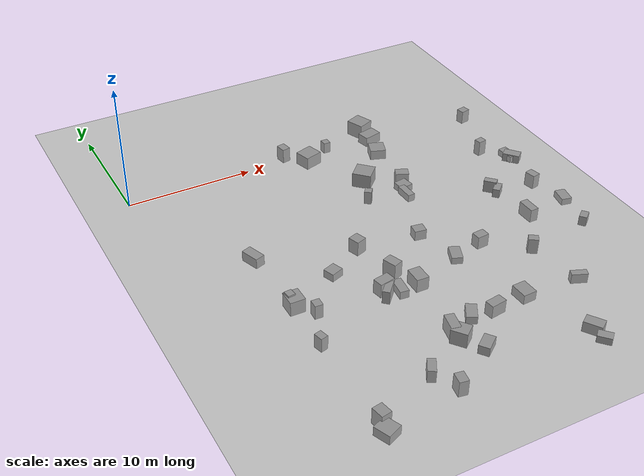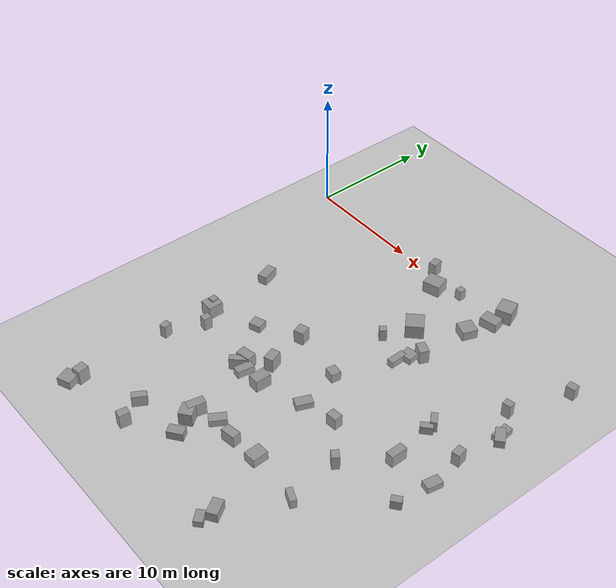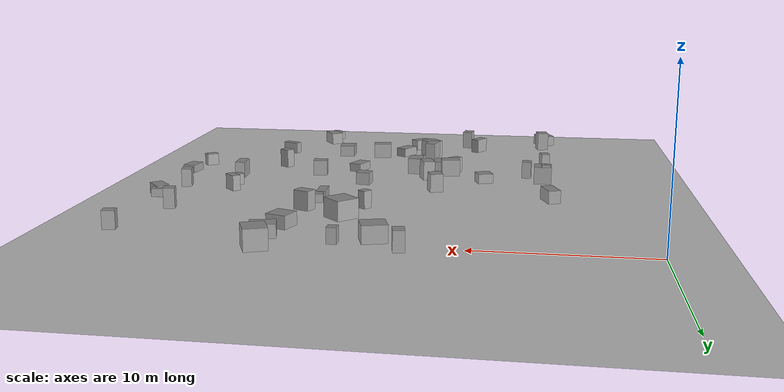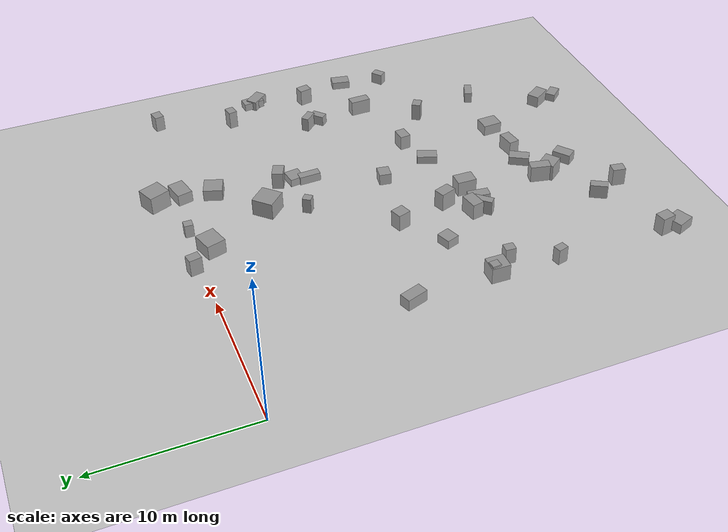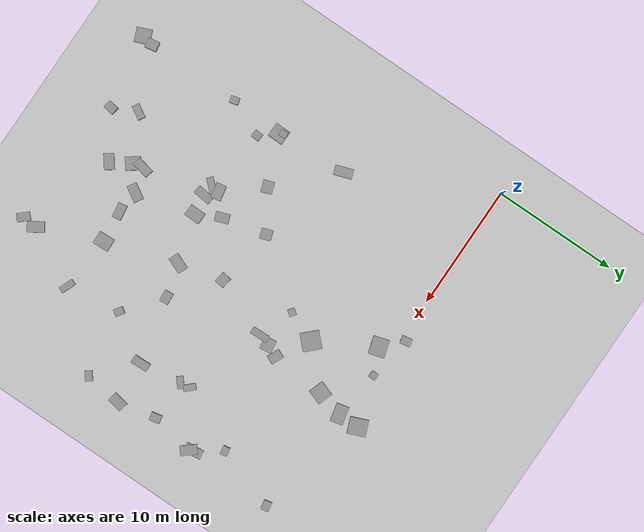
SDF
<sdf version="1.7">
 <world name="default">
  <model name="ground_plane">
   <static>1</static>
   <link name="link">
    <collision name="collision">
     <geometry><plane><normal>0 0 1</normal><size>100 100</size></plane></geometry>
     <surface><friction><ode><mu>100</mu><mu2>50</mu2></ode></friction></surface>
    </collision>
    <visual name="visual">
     <cast_shadows>0</cast_shadows>
     <geometry><plane><normal>0 0 1</normal><size>100 100</size></plane></geometry>
     <material>
      <script><uri>file://media/materials/scripts/gazebo.material</uri><name>Gazebo/Grey</name></script>
     </material>
    </visual>
   </link>
  </model>
  <model name="unit_box_0">
   <static>true</static>
   <pose>5.627471768498843 -16.20319487183246 0.5 0 -0 328.3934222508951</pose>
   <link name="link">
    <inertial>
     <mass>1</mass>
     <inertia>
      <ixx>0.166667</ixx>
      <ixy>0</ixy>
      <ixz>0</ixz>
      <iyy>0.166667</iyy>
      <iyz>0</iyz>
      <izz>0.166667</izz>
     </inertia>
    </inertial>
    <collision name="collision">
     <geometry><box><size>0.5827919822700333 0.5535294650942497 1.420743045685274</size></box></geometry>
    </collision>
    <visual name="visual">
     <geometry><box><size>0.5827919822700333 0.5535294650942497 1.420743045685274</size></box></geometry>
     <material>
      <script><name>Gazebo/Grey</name><uri>file://media/materials/scripts/gazebo.material</uri></script>
     </material>
    </visual>
   </link>
  </model>
  <model name="unit_box_9">
   <static>true</static>
   <pose>20.26620788877139 -2.749642604939659 0.5 0 -0 134.7541991440881</pose>
   <link name="link">
    <inertial>
     <mass>1</mass>
     <inertia>
      <ixx>0.166667</ixx>
      <ixy>0</ixy>
      <ixz>0</ixz>
      <iyy>0.166667</iyy>
      <iyz>0</iyz>
      <izz>0.166667</izz>
     </inertia>
    </inertial>
    <collision name="collision">
     <geometry><box><size>1.24650252537936 1.253774818010641 0.7950120379356779</size></box></geometry>
    </collision>
    <visual name="visual">
     <geometry><box><size>1.24650252537936 1.253774818010641 0.7950120379356779</size></box></geometry>
     <material>
      <script><name>Gazebo/Grey</name><uri>file://media/materials/scripts/gazebo.material</uri></script>
     </material>
    </visual>
   </link>
  </model>
  <model name="unit_box_10">
   <static>true</static>
   <pose>5.437323707347929 -10.792670169444165 0.5 0 -0 201.39579407565316</pose>
   <link name="link">
    <inertial>
     <mass>1</mass>
     <inertia>
      <ixx>0.166667</ixx>
      <ixy>0</ixy>
      <ixz>0</ixz>
      <iyy>0.166667</iyy>
      <iyz>0</iyz>
      <izz>0.166667</izz>
     </inertia>
    </inertial>
    <collision name="collision">
     <geometry><box><size>0.7689403991867364 1.4520089688627191 0.8072029405422583</size></box></geometry>
    </collision>
    <visual name="visual">
     <geometry><box><size>0.7689403991867364 1.4520089688627191 0.8072029405422583</size></box></geometry>
     <material>
      <script><name>Gazebo/Grey</name><uri>file://media/materials/scripts/gazebo.material</uri></script>
     </material>
    </visual>
   </link>
  </model>
  <model name="unit_box_13">
   <static>true</static>
   <pose>6.861349307954114 -17.79102723468238 0.5 0 -0 43.92288849873564</pose>
   <link name="link">
    <inertial>
     <mass>1</mass>
     <inertia>
      <ixx>0.166667</ixx>
      <ixy>0</ixy>
      <ixz>0</ixz>
      <iyy>0.166667</iyy>
      <iyz>0</iyz>
      <izz>0.166667</izz>
     </inertia>
    </inertial>
    <collision name="collision">
     <geometry><box><size>0.6055544027230478 0.6857820129138893 1.1537404358124181</size></box></geometry>
    </collision>
    <visual name="visual">
     <geometry><box><size>0.6055544027230478 0.6857820129138893 1.1537404358124181</size></box></geometry>
     <material>
      <script><name>Gazebo/Grey</name><uri>file://media/materials/scripts/gazebo.material</uri></script>
     </material>
    </visual>
   </link>
  </model>
  <model name="unit_box_14">
   <static>true</static>
   <pose>5.618380994731012 -20.709095346360606 0.5 0 -0 292.4153457704035</pose>
   <link name="link">
    <inertial>
     <mass>1</mass>
     <inertia>
      <ixx>0.166667</ixx>
      <ixy>0</ixy>
      <ixz>0</ixz>
      <iyy>0.166667</iyy>
      <iyz>0</iyz>
      <izz>0.166667</izz>
     </inertia>
    </inertial>
    <collision name="collision">
     <geometry><box><size>0.5567356589885245 0.7008477635557117 1.1573102387236456</size></box></geometry>
    </collision>
    <visual name="visual">
     <geometry><box><size>0.5567356589885245 0.7008477635557117 1.1573102387236456</size></box></geometry>
     <material>
      <script><name>Gazebo/Grey</name><uri>file://media/materials/scripts/gazebo.material</uri></script>
     </material>
    </visual>
   </link>
  </model>
  <model name="unit_box_17">
   <static>true</static>
   <pose>12.66213659052233 -12.962916933397935 0.5 0 -0 286.207196710561</pose>
   <link name="link">
    <inertial>
     <mass>1</mass>
     <inertia>
      <ixx>0.166667</ixx>
      <ixy>0</ixy>
      <ixz>0</ixz>
      <iyy>0.166667</iyy>
      <iyz>0</iyz>
      <izz>0.166667</izz>
     </inertia>
    </inertial>
    <collision name="collision">
     <geometry><box><size>0.8311423269497479 0.8872742078254097 1.2710147313330409</size></box></geometry>
    </collision>
    <visual name="visual">
     <geometry><box><size>0.8311423269497479 0.8872742078254097 1.2710147313330409</size></box></geometry>
     <material>
      <script><name>Gazebo/Grey</name><uri>file://media/materials/scripts/gazebo.material</uri></script>
     </material>
    </visual>
   </link>
  </model>
  <model name="unit_box_18">
   <static>true</static>
   <pose>9.636020102886391 -14.911595727227738 0.5 0 -0 169.99521131837008</pose>
   <link name="link">
    <inertial>
     <mass>1</mass>
     <inertia>
      <ixx>0.166667</ixx>
      <ixy>0</ixy>
      <ixz>0</ixz>
      <iyy>0.166667</iyy>
      <iyz>0</iyz>
      <izz>0.166667</izz>
     </inertia>
    </inertial>
    <collision name="collision">
     <geometry><box><size>0.9842812903339123 0.8837834291854924 0.6274265674525699</size></box></geometry>
    </collision>
    <visual name="visual">
     <geometry><box><size>0.9842812903339123 0.8837834291854924 0.6274265674525699</size></box></geometry>
     <material>
      <script><name>Gazebo/Grey</name><uri>file://media/materials/scripts/gazebo.material</uri></script>
     </material>
    </visual>
   </link>
  </model>
  <model name="unit_box_20">
   <static>true</static>
   <pose>29.36088644894142 -8.22944636349619 0.5 0 -0 121.04933037444114</pose>
   <link name="link">
    <inertial>
     <mass>1</mass>
     <inertia>
      <ixx>0.166667</ixx>
      <ixy>0</ixy>
      <ixz>0</ixz>
      <iyy>0.166667</iyy>
      <iyz>0</iyz>
      <izz>0.166667</izz>
     </inertia>
    </inertial>
    <collision name="collision">
     <geometry><box><size>1.4406663692053037 0.7334797075197601 0.5174091967911121</size></box></geometry>
    </collision>
    <visual name="visual">
     <geometry><box><size>1.4406663692053037 0.7334797075197601 0.5174091967911121</size></box></geometry>
     <material>
      <script><name>Gazebo/Grey</name><uri>file://media/materials/scripts/gazebo.material</uri></script>
     </material>
    </visual>
   </link>
  </model>
  <model name="unit_box_22">
   <static>true</static>
   <pose>29.514338587605934 -8.558415328057897 0.5 0 -0 225.32562232518265</pose>
   <link name="link">
    <inertial>
     <mass>1</mass>
     <inertia>
      <ixx>0.166667</ixx>
      <ixy>0</ixy>
      <ixz>0</ixz>
      <iyy>0.166667</iyy>
      <iyz>0</iyz>
      <izz>0.166667</izz>
     </inertia>
    </inertial>
    <collision name="collision">
     <geometry><box><size>1.3274998079993439 0.7774295099843246 0.6819152240145191</size></box></geometry>
    </collision>
    <visual name="visual">
     <geometry><box><size>1.3274998079993439 0.7774295099843246 0.6819152240145191</size></box></geometry>
     <material>
      <script><name>Gazebo/Grey</name><uri>file://media/materials/scripts/gazebo.material</uri></script>
     </material>
    </visual>
   </link>
  </model>
  <model name="unit_box_34">
   <static>true</static>
   <pose>28.914605373808442 -12.025328264805125 0.5 0 -0 78.74361488101322</pose>
   <link name="link">
    <inertial>
     <mass>1</mass>
     <inertia>
      <ixx>0.166667</ixx>
      <ixy>0</ixy>
      <ixz>0</ixz>
      <iyy>0.166667</iyy>
      <iyz>0</iyz>
      <izz>0.166667</izz>
     </inertia>
    </inertial>
    <collision name="collision">
     <geometry><box><size>0.6556586847935033 0.850620473306017 1.2209652730030358</size></box></geometry>
    </collision>
    <visual name="visual">
     <geometry><box><size>0.6556586847935033 0.850620473306017 1.2209652730030358</size></box></geometry>
     <material>
      <script><name>Gazebo/Grey</name><uri>file://media/materials/scripts/gazebo.material</uri></script>
     </material>
    </visual>
   </link>
  </model>
  <model name="unit_box_38">
   <static>true</static>
   <pose>14.467876250818186 -18.300475400683123 0.5 0 -0 124.07046827870927</pose>
   <link name="link">
    <inertial>
     <mass>1</mass>
     <inertia>
      <ixx>0.166667</ixx>
      <ixy>0</ixy>
      <ixz>0</ixz>
      <iyy>0.166667</iyy>
      <iyz>0</iyz>
      <izz>0.166667</izz>
     </inertia>
    </inertial>
    <collision name="collision">
     <geometry><box><size>1.2962735594801074 0.9445758369407639 1.068102958875098</size></box></geometry>
    </collision>
    <visual name="visual">
     <geometry><box><size>1.2962735594801074 0.9445758369407639 1.068102958875098</size></box></geometry>
     <material>
      <script><name>Gazebo/Grey</name><uri>file://media/materials/scripts/gazebo.material</uri></script>
     </material>
    </visual>
   </link>
  </model>
  <model name="unit_box_61">
   <static>true</static>
   <pose>5.67875527967815 -28.24224282441873 0.5 0 -0 260.9306045254144</pose>
   <link name="link">
    <inertial>
     <mass>1</mass>
     <inertia>
      <ixx>0.166667</ixx>
      <ixy>0</ixy>
      <ixz>0</ixz>
      <iyy>0.166667</iyy>
      <iyz>0</iyz>
      <izz>0.166667</izz>
     </inertia>
    </inertial>
    <collision name="collision">
     <geometry><box><size>0.7703482658160337 0.9340236639117089 1.4822614056880348</size></box></geometry>
    </collision>
    <visual name="visual">
     <geometry><box><size>0.7703482658160337 0.9340236639117089 1.4822614056880348</size></box></geometry>
     <material>
      <script><name>Gazebo/Grey</name><uri>file://media/materials/scripts/gazebo.material</uri></script>
     </material>
    </visual>
   </link>
  </model>
  <model name="unit_box_64">
   <static>true</static>
   <pose>11.954771741300867 -18.480248730441062 0.5 0 -0 354.24718625385356</pose>
   <link name="link">
    <inertial>
     <mass>1</mass>
     <inertia>
      <ixx>0.166667</ixx>
      <ixy>0</ixy>
      <ixz>0</ixz>
      <iyy>0.166667</iyy>
      <iyz>0</iyz>
      <izz>0.166667</izz>
     </inertia>
    </inertial>
    <collision name="collision">
     <geometry><box><size>0.5375414825161312 1.3107667189838033 1.034974010778622</size></box></geometry>
    </collision>
    <visual name="visual">
     <geometry><box><size>0.5375414825161312 1.3107667189838033 1.034974010778622</size></box></geometry>
     <material>
      <script><name>Gazebo/Grey</name><uri>file://media/materials/scripts/gazebo.material</uri></script>
     </material>
    </visual>
   </link>
  </model>
  <model name="unit_box_65">
   <static>true</static>
   <pose>14.8514081295017 -25.94918962445372 0.5 0 -0 291.23911907936224</pose>
   <link name="link">
    <inertial>
     <mass>1</mass>
     <inertia>
      <ixx>0.166667</ixx>
      <ixy>0</ixy>
      <ixz>0</ixz>
      <iyy>0.166667</iyy>
      <iyz>0</iyz>
      <izz>0.166667</izz>
     </inertia>
    </inertial>
    <collision name="collision">
     <geometry><box><size>0.7994468303082655 1.2625813742382004 0.7090394780102623</size></box></geometry>
    </collision>
    <visual name="visual">
     <geometry><box><size>0.7994468303082655 1.2625813742382004 0.7090394780102623</size></box></geometry>
     <material>
      <script><name>Gazebo/Grey</name><uri>file://media/materials/scripts/gazebo.material</uri></script>
     </material>
    </visual>
   </link>
  </model>
  <model name="unit_box_67">
   <static>true</static>
   <pose>20.887431410688087 -16.520843654519723 0.5 0 -0 284.3958549635605</pose>
   <link name="link">
    <inertial>
     <mass>1</mass>
     <inertia>
      <ixx>0.166667</ixx>
      <ixy>0</ixy>
      <ixz>0</ixz>
      <iyy>0.166667</iyy>
      <iyz>0</iyz>
      <izz>0.166667</izz>
     </inertia>
    </inertial>
    <collision name="collision">
     <geometry><box><size>0.7149756800078582 0.9355412481580129 1.0208205015338203</size></box></geometry>
    </collision>
    <visual name="visual">
     <geometry><box><size>0.7149756800078582 0.9355412481580129 1.0208205015338203</size></box></geometry>
     <material>
      <script><name>Gazebo/Grey</name><uri>file://media/materials/scripts/gazebo.material</uri></script>
     </material>
    </visual>
   </link>
  </model>
  <model name="unit_box_71">
   <static>true</static>
   <pose>13.934990552152925 -24.362914338749952 0.5 0 -0 286.5432340860554</pose>
   <link name="link">
    <inertial>
     <mass>1</mass>
     <inertia>
      <ixx>0.166667</ixx>
      <ixy>0</ixy>
      <ixz>0</ixz>
      <iyy>0.166667</iyy>
      <iyz>0</iyz>
      <izz>0.166667</izz>
     </inertia>
    </inertial>
    <collision name="collision">
     <geometry><box><size>1.054121823280802 1.1887777883922963 1.2189219707966865</size></box></geometry>
    </collision>
    <visual name="visual">
     <geometry><box><size>1.054121823280802 1.1887777883922963 1.2189219707966865</size></box></geometry>
     <material>
      <script><name>Gazebo/Grey</name><uri>file://media/materials/scripts/gazebo.material</uri></script>
     </material>
    </visual>
   </link>
  </model>
  <model name="unit_box_73">
   <static>true</static>
   <pose>20.76907273333083 -0.6452723643180072 0.5 0 -0 262.5445965349561</pose>
   <link name="link">
    <inertial>
     <mass>1</mass>
     <inertia>
      <ixx>0.166667</ixx>
      <ixy>0</ixy>
      <ixz>0</ixz>
      <iyy>0.166667</iyy>
      <iyz>0</iyz>
      <izz>0.166667</izz>
     </inertia>
    </inertial>
    <collision name="collision">
     <geometry><box><size>1.0173937533421666 1.4581752642060397 0.8080980140457492</size></box></geometry>
    </collision>
    <visual name="visual">
     <geometry><box><size>1.0173937533421666 1.4581752642060397 0.8080980140457492</size></box></geometry>
     <material>
      <script><name>Gazebo/Grey</name><uri>file://media/materials/scripts/gazebo.material</uri></script>
     </material>
    </visual>
   </link>
  </model>
  <model name="unit_box_81">
   <static>true</static>
   <pose>20.079405287410474 -22.85417193545012 0.5 0 -0 197.96271058809796</pose>
   <link name="link">
    <inertial>
     <mass>1</mass>
     <inertia>
      <ixx>0.166667</ixx>
      <ixy>0</ixy>
      <ixz>0</ixz>
      <iyy>0.166667</iyy>
      <iyz>0</iyz>
      <izz>0.166667</izz>
     </inertia>
    </inertial>
    <collision name="collision">
     <geometry><box><size>1.0439034401594314 1.291199232273316 0.7578642070251131</size></box></geometry>
    </collision>
    <visual name="visual">
     <geometry><box><size>1.0439034401594314 1.291199232273316 0.7578642070251131</size></box></geometry>
     <material>
      <script><name>Gazebo/Grey</name><uri>file://media/materials/scripts/gazebo.material</uri></script>
     </material>
    </visual>
   </link>
  </model>
  <model name="unit_box_90">
   <static>true</static>
   <pose>11.372793932743967 -28.136041952739646 0.5 0 -0 155.3417239083668</pose>
   <link name="link">
    <inertial>
     <mass>1</mass>
     <inertia>
      <ixx>0.166667</ixx>
      <ixy>0</ixy>
      <ixz>0</ixz>
      <iyy>0.166667</iyy>
      <iyz>0</iyz>
      <izz>0.166667</izz>
     </inertia>
    </inertial>
    <collision name="collision">
     <geometry><box><size>0.8770092352250053 0.6732562264050042 1.3872176621386807</size></box></geometry>
    </collision>
    <visual name="visual">
     <geometry><box><size>0.8770092352250053 0.6732562264050042 1.3872176621386807</size></box></geometry>
     <material>
      <script><name>Gazebo/Grey</name><uri>file://media/materials/scripts/gazebo.material</uri></script>
     </material>
    </visual>
   </link>
  </model>
  <model name="unit_box_91">
   <static>true</static>
   <pose>22.089721328306993 -27.729974741461795 0.5 0 -0 88.54612061045665</pose>
   <link name="link">
    <inertial>
     <mass>1</mass>
     <inertia>
      <ixx>0.166667</ixx>
      <ixy>0</ixy>
      <ixz>0</ixz>
      <iyy>0.166667</iyy>
      <iyz>0</iyz>
      <izz>0.166667</izz>
     </inertia>
    </inertial>
    <collision name="collision">
     <geometry><box><size>0.8379828814659755 1.3404774359545404 0.8289447092723865</size></box></geometry>
    </collision>
    <visual name="visual">
     <geometry><box><size>0.8379828814659755 1.3404774359545404 0.8289447092723865</size></box></geometry>
     <material>
      <script><name>Gazebo/Grey</name><uri>file://media/materials/scripts/gazebo.material</uri></script>
     </material>
    </visual>
   </link>
  </model>
  <model name="unit_box_92">
   <static>true</static>
   <pose>15.67848113137429 -22.977320713742238 0.5 0 -0 169.1043221821715</pose>
   <link name="link">
    <inertial>
     <mass>1</mass>
     <inertia>
      <ixx>0.166667</ixx>
      <ixy>0</ixy>
      <ixz>0</ixz>
      <iyy>0.166667</iyy>
      <iyz>0</iyz>
      <izz>0.166667</izz>
     </inertia>
    </inertial>
    <collision name="collision">
     <geometry><box><size>0.7793548128056306 1.366835988614685 0.6032108256449662</size></box></geometry>
    </collision>
    <visual name="visual">
     <geometry><box><size>0.7793548128056306 1.366835988614685 0.6032108256449662</size></box></geometry>
     <material>
      <script><name>Gazebo/Grey</name><uri>file://media/materials/scripts/gazebo.material</uri></script>
     </material>
    </visual>
   </link>
  </model>
  <model name="unit_box_96">
   <static>true</static>
   <pose>16.447305153602542 -8.001917337432339 0.5 0 -0 258.52967700345243</pose>
   <link name="link">
    <inertial>
     <mass>1</mass>
     <inertia>
      <ixx>0.166667</ixx>
      <ixy>0</ixy>
      <ixz>0</ixz>
      <iyy>0.166667</iyy>
      <iyz>0</iyz>
      <izz>0.166667</izz>
     </inertia>
    </inertial>
    <collision name="collision">
     <geometry><box><size>0.5779352898249747 0.5568040470911009 1.0862780474396976</size></box></geometry>
    </collision>
    <visual name="visual">
     <geometry><box><size>0.5779352898249747 0.5568040470911009 1.0862780474396976</size></box></geometry>
     <material>
      <script><name>Gazebo/Grey</name><uri>file://media/materials/scripts/gazebo.material</uri></script>
     </material>
    </visual>
   </link>
  </model>
  <model name="unit_box_100">
   <static>true</static>
   <pose>23.821354905663092 -18.868861096920654 0.5 0 -0 236.60050508137903</pose>
   <link name="link">
    <inertial>
     <mass>1</mass>
     <inertia>
      <ixx>0.166667</ixx>
      <ixy>0</ixy>
      <ixz>0</ixz>
      <iyy>0.166667</iyy>
      <iyz>0</iyz>
      <izz>0.166667</izz>
     </inertia>
    </inertial>
    <collision name="collision">
     <geometry><box><size>0.594585530469846 0.7328016277559456 1.3959138400324016</size></box></geometry>
    </collision>
    <visual name="visual">
     <geometry><box><size>0.594585530469846 0.7328016277559456 1.3959138400324016</size></box></geometry>
     <material>
      <script><name>Gazebo/Grey</name><uri>file://media/materials/scripts/gazebo.material</uri></script>
     </material>
    </visual>
   </link>
  </model>
  <model name="unit_box_102">
   <static>true</static>
   <pose>25.640308691642645 -11.988165770085704 0.5 0 -0 244.20148634049676</pose>
   <link name="link">
    <inertial>
     <mass>1</mass>
     <inertia>
      <ixx>0.166667</ixx>
      <ixy>0</ixy>
      <ixz>0</ixz>
      <iyy>0.166667</iyy>
      <iyz>0</iyz>
      <izz>0.166667</izz>
     </inertia>
    </inertial>
    <collision name="collision">
     <geometry><box><size>0.5402655710411569 0.9765031892145201 0.708088988293207</size></box></geometry>
    </collision>
    <visual name="visual">
     <geometry><box><size>0.5402655710411569 0.9765031892145201 0.708088988293207</size></box></geometry>
     <material>
      <script><name>Gazebo/Grey</name><uri>file://media/materials/scripts/gazebo.material</uri></script>
     </material>
    </visual>
   </link>
  </model>
  <model name="unit_box_106">
   <static>true</static>
   <pose>16.905680650615743 -0.17440966961279258 0.5 0 -0 166.47619467748655</pose>
   <link name="link">
    <inertial>
     <mass>1</mass>
     <inertia>
      <ixx>0.166667</ixx>
      <ixy>0</ixy>
      <ixz>0</ixz>
      <iyy>0.166667</iyy>
      <iyz>0</iyz>
      <izz>0.166667</izz>
     </inertia>
    </inertial>
    <collision name="collision">
     <geometry><box><size>0.557317852653162 0.5789750852330469 0.9098194288962207</size></box></geometry>
    </collision>
    <visual name="visual">
     <geometry><box><size>0.557317852653162 0.5789750852330469 0.9098194288962207</size></box></geometry>
     <material>
      <script><name>Gazebo/Grey</name><uri>file://media/materials/scripts/gazebo.material</uri></script>
     </material>
    </visual>
   </link>
  </model>
  <model name="unit_box_117">
   <static>true</static>
   <pose>18.263514791495695 -17.23780436916794 0.5 0 -0 45.167996116693864</pose>
   <link name="link">
    <inertial>
     <mass>1</mass>
     <inertia>
      <ixx>0.166667</ixx>
      <ixy>0</ixy>
      <ixz>0</ixz>
      <iyy>0.166667</iyy>
      <iyz>0</iyz>
      <izz>0.166667</izz>
     </inertia>
    </inertial>
    <collision name="collision">
     <geometry><box><size>1.3500000748014378 0.8212375097040306 0.5414004660671199</size></box></geometry>
    </collision>
    <visual name="visual">
     <geometry><box><size>1.3500000748014378 0.8212375097040306 0.5414004660671199</size></box></geometry>
     <material>
      <script><name>Gazebo/Grey</name><uri>file://media/materials/scripts/gazebo.material</uri></script>
     </material>
    </visual>
   </link>
  </model>
  <model name="unit_box_119">
   <static>true</static>
   <pose>19.945153223786924 -7.133280575252652 0.5 0 -0 208.50133431002817</pose>
   <link name="link">
    <inertial>
     <mass>1</mass>
     <inertia>
      <ixx>0.166667</ixx>
      <ixy>0</ixy>
      <ixz>0</ixz>
      <iyy>0.166667</iyy>
      <iyz>0</iyz>
      <izz>0.166667</izz>
     </inertia>
    </inertial>
    <collision name="collision">
     <geometry><box><size>0.7519631861737024 1.030554142130765 1.3001567611704372</size></box></geometry>
    </collision>
    <visual name="visual">
     <geometry><box><size>0.7519631861737024 1.030554142130765 1.3001567611704372</size></box></geometry>
     <material>
      <script><name>Gazebo/Grey</name><uri>file://media/materials/scripts/gazebo.material</uri></script>
     </material>
    </visual>
   </link>
  </model>
  <model name="unit_box_126">
   <static>true</static>
   <pose>10.465471480255943 -26.224594810623906 0.5 0 -0 327.76482978589434</pose>
   <link name="link">
    <inertial>
     <mass>1</mass>
     <inertia>
      <ixx>0.166667</ixx>
      <ixy>0</ixy>
      <ixz>0</ixz>
      <iyy>0.166667</iyy>
      <iyz>0</iyz>
      <izz>0.166667</izz>
     </inertia>
    </inertial>
    <collision name="collision">
     <geometry><box><size>1.162193226879027 0.586134133470292 0.9731772737385826</size></box></geometry>
    </collision>
    <visual name="visual">
     <geometry><box><size>1.162193226879027 0.586134133470292 0.9731772737385826</size></box></geometry>
     <material>
      <script><name>Gazebo/Grey</name><uri>file://media/materials/scripts/gazebo.material</uri></script>
     </material>
    </visual>
   </link>
  </model>
  <model name="unit_box_127">
   <static>true</static>
   <pose>29.542155041663875 -15.083247419683625 0.5 0 -0 131.75685047710314</pose>
   <link name="link">
    <inertial>
     <mass>1</mass>
     <inertia>
      <ixx>0.166667</ixx>
      <ixy>0</ixy>
      <ixz>0</ixz>
      <iyy>0.166667</iyy>
      <iyz>0</iyz>
      <izz>0.166667</izz>
     </inertia>
    </inertial>
    <collision name="collision">
     <geometry><box><size>0.81751265408999 1.248204757345571 0.5272923799168867</size></box></geometry>
    </collision>
    <visual name="visual">
     <geometry><box><size>0.81751265408999 1.248204757345571 0.5272923799168867</size></box></geometry>
     <material>
      <script><name>Gazebo/Grey</name><uri>file://media/materials/scripts/gazebo.material</uri></script>
     </material>
    </visual>
   </link>
  </model>
  <model name="unit_box_129">
   <static>true</static>
   <pose>19.509919543229387 -8.107752914462218 0.5 0 -0 69.26109723326967</pose>
   <link name="link">
    <inertial>
     <mass>1</mass>
     <inertia>
      <ixx>0.166667</ixx>
      <ixy>0</ixy>
      <ixz>0</ixz>
      <iyy>0.166667</iyy>
      <iyz>0</iyz>
      <izz>0.166667</izz>
     </inertia>
    </inertial>
    <collision name="collision">
     <geometry><box><size>1.0276241652054132 0.9756042300432729 0.538038784195611</size></box></geometry>
    </collision>
    <visual name="visual">
     <geometry><box><size>1.0276241652054132 0.9756042300432729 0.538038784195611</size></box></geometry>
     <material>
      <script><name>Gazebo/Grey</name><uri>file://media/materials/scripts/gazebo.material</uri></script>
     </material>
    </visual>
   </link>
  </model>
  <model name="unit_box_132">
   <static>true</static>
   <pose>5.498872367713567 -29.203600902166993 0.5 0 -0 49.088388926442654</pose>
   <link name="link">
    <inertial>
     <mass>1</mass>
     <inertia>
      <ixx>0.166667</ixx>
      <ixy>0</ixy>
      <ixz>0</ixz>
      <iyy>0.166667</iyy>
      <iyz>0</iyz>
      <izz>0.166667</izz>
     </inertia>
    </inertial>
    <collision name="collision">
     <geometry><box><size>1.2152097628247542 1.1498441889643243 0.7171091863749169</size></box></geometry>
    </collision>
    <visual name="visual">
     <geometry><box><size>1.2152097628247542 1.1498441889643243 0.7171091863749169</size></box></geometry>
     <material>
      <script><name>Gazebo/Grey</name><uri>file://media/materials/scripts/gazebo.material</uri></script>
     </material>
    </visual>
   </link>
  </model>
  <model name="unit_box_134">
   <static>true</static>
   <pose>19.22073946333976 -9.04648420948918 0.5 0 -0 204.2376843390889</pose>
   <link name="link">
    <inertial>
     <mass>1</mass>
     <inertia>
      <ixx>0.166667</ixx>
      <ixy>0</ixy>
      <ixz>0</ixz>
      <iyy>0.166667</iyy>
      <iyz>0</iyz>
      <izz>0.166667</izz>
     </inertia>
    </inertial>
    <collision name="collision">
     <geometry><box><size>0.5604865662443484 1.4374626658849965 0.5858053344638852</size></box></geometry>
    </collision>
    <visual name="visual">
     <geometry><box><size>0.5604865662443484 1.4374626658849965 0.5858053344638852</size></box></geometry>
     <material>
      <script><name>Gazebo/Grey</name><uri>file://media/materials/scripts/gazebo.material</uri></script>
     </material>
    </visual>
   </link>
  </model>
  <model name="unit_box_135">
   <static>true</static>
   <pose>17.51569321792973 -23.13964015172109 0.5 0 -0 125.81161395922345</pose>
   <link name="link">
    <inertial>
     <mass>1</mass>
     <inertia>
      <ixx>0.166667</ixx>
      <ixy>0</ixy>
      <ixz>0</ixz>
      <iyy>0.166667</iyy>
      <iyz>0</iyz>
      <izz>0.166667</izz>
     </inertia>
    </inertial>
    <collision name="collision">
     <geometry><box><size>1.2215430706004233 0.7140693437978688 1.0259480483274146</size></box></geometry>
    </collision>
    <visual name="visual">
     <geometry><box><size>1.2215430706004233 0.7140693437978688 1.0259480483274146</size></box></geometry>
     <material>
      <script><name>Gazebo/Grey</name><uri>file://media/materials/scripts/gazebo.material</uri></script>
     </material>
    </visual>
   </link>
  </model>
  <model name="unit_box_147">
   <static>true</static>
   <pose>20.785578232240574 1.0344337926082616 0.5 0 -0 272.1355964800964</pose>
   <link name="link">
    <inertial>
     <mass>1</mass>
     <inertia>
      <ixx>0.166667</ixx>
      <ixy>0</ixy>
      <ixz>0</ixz>
      <iyy>0.166667</iyy>
      <iyz>0</iyz>
      <izz>0.166667</izz>
     </inertia>
    </inertial>
    <collision name="collision">
     <geometry><box><size>1.4402599975030195 1.3079808429432722 1.3697303618265937</size></box></geometry>
    </collision>
    <visual name="visual">
     <geometry><box><size>1.4402599975030195 1.3079808429432722 1.3697303618265937</size></box></geometry>
     <material>
      <script><name>Gazebo/Grey</name><uri>file://media/materials/scripts/gazebo.material</uri></script>
     </material>
    </visual>
   </link>
  </model>
  <model name="unit_box_150">
   <static>true</static>
   <pose>21.99565732162489 -28.936412497954265 0.5 0 -0 266.20187406262323</pose>
   <link name="link">
    <inertial>
     <mass>1</mass>
     <inertia>
      <ixx>0.166667</ixx>
      <ixy>0</ixy>
      <ixz>0</ixz>
      <iyy>0.166667</iyy>
      <iyz>0</iyz>
      <izz>0.166667</izz>
     </inertia>
    </inertial>
    <collision name="collision">
     <geometry><box><size>1.0365191393930577 0.674793211397256 0.5607969895734486</size></box></geometry>
    </collision>
    <visual name="visual">
     <geometry><box><size>1.0365191393930577 0.674793211397256 0.5607969895734486</size></box></geometry>
     <material>
      <script><name>Gazebo/Grey</name><uri>file://media/materials/scripts/gazebo.material</uri></script>
     </material>
    </visual>
   </link>
  </model>
  <model name="unit_box_151">
   <static>true</static>
   <pose>13.511278318770366 -16.44075875987675 0.5 0 -0 226.5449853226281</pose>
   <link name="link">
    <inertial>
     <mass>1</mass>
     <inertia>
      <ixx>0.166667</ixx>
      <ixy>0</ixy>
      <ixz>0</ixz>
      <iyy>0.166667</iyy>
      <iyz>0</iyz>
      <izz>0.166667</izz>
     </inertia>
    </inertial>
    <collision name="collision">
     <geometry><box><size>0.7658196040825569 1.0923914752373163 1.4645404294088546</size></box></geometry>
    </collision>
    <visual name="visual">
     <geometry><box><size>0.7658196040825569 1.0923914752373163 1.4645404294088546</size></box></geometry>
     <material>
      <script><name>Gazebo/Grey</name><uri>file://media/materials/scripts/gazebo.material</uri></script>
     </material>
    </visual>
   </link>
  </model>
  <model name="unit_box_153">
   <static>true</static>
   <pose>26.128467223932347 -15.301682259808448 0.5 0 -0 155.53227589568928</pose>
   <link name="link">
    <inertial>
     <mass>1</mass>
     <inertia>
      <ixx>0.166667</ixx>
      <ixy>0</ixy>
      <ixz>0</ixz>
      <iyy>0.166667</iyy>
      <iyz>0</iyz>
      <izz>0.166667</izz>
     </inertia>
    </inertial>
    <collision name="collision">
     <geometry><box><size>1.363894014396004 0.6599992607850937 1.0676379729765388</size></box></geometry>
    </collision>
    <visual name="visual">
     <geometry><box><size>1.363894014396004 0.6599992607850937 1.0676379729765388</size></box></geometry>
     <material>
      <script><name>Gazebo/Grey</name><uri>file://media/materials/scripts/gazebo.material</uri></script>
     </material>
    </visual>
   </link>
  </model>
  <model name="unit_box_154">
   <static>true</static>
   <pose>17.385971422427666 -13.716576143198338 0.5 0 -0 72.10841548489338</pose>
   <link name="link">
    <inertial>
     <mass>1</mass>
     <inertia>
      <ixx>0.166667</ixx>
      <ixy>0</ixy>
      <ixz>0</ixz>
      <iyy>0.166667</iyy>
      <iyz>0</iyz>
      <izz>0.166667</izz>
     </inertia>
    </inertial>
    <collision name="collision">
     <geometry><box><size>0.9011043816360758 0.800628008617434 0.795076487074017</size></box></geometry>
    </collision>
    <visual name="visual">
     <geometry><box><size>0.9011043816360758 0.800628008617434 0.795076487074017</size></box></geometry>
     <material>
      <script><name>Gazebo/Grey</name><uri>file://media/materials/scripts/gazebo.material</uri></script>
     </material>
    </visual>
   </link>
  </model>
  <model name="unit_box_156">
   <static>true</static>
   <pose>14.881025066840522 -1.071117389815278 0.5 0 -0 58.40883839502452</pose>
   <link name="link">
    <inertial>
     <mass>1</mass>
     <inertia>
      <ixx>0.166667</ixx>
      <ixy>0</ixy>
      <ixz>0</ixz>
      <iyy>0.166667</iyy>
      <iyz>0</iyz>
      <izz>0.166667</izz>
     </inertia>
    </inertial>
    <collision name="collision">
     <geometry><box><size>1.2792472932207029 1.4363639438881228 1.0233937728667555</size></box></geometry>
    </collision>
    <visual name="visual">
     <geometry><box><size>1.2792472932207029 1.4363639438881228 1.0233937728667555</size></box></geometry>
     <material>
      <script><name>Gazebo/Grey</name><uri>file://media/materials/scripts/gazebo.material</uri></script>
     </material>
    </visual>
   </link>
  </model>
  <model name="unit_box_161">
   <static>true</static>
   <pose>12.046458080481763 -17.775225121435803 0.5 0 -0 77.15918962965272</pose>
   <link name="link">
    <inertial>
     <mass>1</mass>
     <inertia>
      <ixx>0.166667</ixx>
      <ixy>0</ixy>
      <ixz>0</ixz>
      <iyy>0.166667</iyy>
      <iyz>0</iyz>
      <izz>0.166667</izz>
     </inertia>
    </inertial>
    <collision name="collision">
     <geometry><box><size>0.8001538416747879 1.2262135416435163 1.1803261936874234</size></box></geometry>
    </collision>
    <visual name="visual">
     <geometry><box><size>0.8001538416747879 1.2262135416435163 1.1803261936874234</size></box></geometry>
     <material>
      <script><name>Gazebo/Grey</name><uri>file://media/materials/scripts/gazebo.material</uri></script>
     </material>
    </visual>
   </link>
  </model>
  <model name="unit_box_163">
   <static>true</static>
   <pose>28.001228348094692 -6.241523277133897 0.5 0 -0 89.7126114403957</pose>
   <link name="link">
    <inertial>
     <mass>1</mass>
     <inertia>
      <ixx>0.166667</ixx>
      <ixy>0</ixy>
      <ixz>0</ixz>
      <iyy>0.166667</iyy>
      <iyz>0</iyz>
      <izz>0.166667</izz>
     </inertia>
    </inertial>
    <collision name="collision">
     <geometry><box><size>0.5756413185743555 0.687453450120901 1.4256399661668797</size></box></geometry>
    </collision>
    <visual name="visual">
     <geometry><box><size>0.5756413185743555 0.687453450120901 1.4256399661668797</size></box></geometry>
     <material>
      <script><name>Gazebo/Grey</name><uri>file://media/materials/scripts/gazebo.material</uri></script>
     </material>
    </visual>
   </link>
  </model>
  <model name="unit_box_168">
   <static>true</static>
   <pose>24.454162100282012 -23.221695968269024 0.5 0 -0 18.46386128601496</pose>
   <link name="link">
    <inertial>
     <mass>1</mass>
     <inertia>
      <ixx>0.166667</ixx>
      <ixy>0</ixy>
      <ixz>0</ixz>
      <iyy>0.166667</iyy>
      <iyz>0</iyz>
      <izz>0.166667</izz>
     </inertia>
    </inertial>
    <collision name="collision">
     <geometry><box><size>1.1819709869360309 0.5131682622815256 0.7757507443526392</size></box></geometry>
    </collision>
    <visual name="visual">
     <geometry><box><size>1.1819709869360309 0.5131682622815256 0.7757507443526392</size></box></geometry>
     <material>
      <script><name>Gazebo/Grey</name><uri>file://media/materials/scripts/gazebo.material</uri></script>
     </material>
    </visual>
   </link>
  </model>
  <model name="unit_box_171">
   <static>true</static>
   <pose>17.433238640105188 -5.580023900794494 0.5 0 -0 230.11847947160115</pose>
   <link name="link">
    <inertial>
     <mass>1</mass>
     <inertia>
      <ixx>0.166667</ixx>
      <ixy>0</ixy>
      <ixz>0</ixz>
      <iyy>0.166667</iyy>
      <iyz>0</iyz>
      <izz>0.166667</izz>
     </inertia>
    </inertial>
    <collision name="collision">
     <geometry><box><size>1.455167651299908 1.4751636606379974 1.2906793925386806</size></box></geometry>
    </collision>
    <visual name="visual">
     <geometry><box><size>1.455167651299908 1.4751636606379974 1.2906793925386806</size></box></geometry>
     <material>
      <script><name>Gazebo/Grey</name><uri>file://media/materials/scripts/gazebo.material</uri></script>
     </material>
    </visual>
   </link>
  </model>
  <model name="unit_box_172">
   <static>true</static>
   <pose>13.350062597102195 0.3930154348657737 0.5 0 -0 216.95423520397316</pose>
   <link name="link">
    <inertial>
     <mass>1</mass>
     <inertia>
      <ixx>0.166667</ixx>
      <ixy>0</ixy>
      <ixz>0</ixz>
      <iyy>0.166667</iyy>
      <iyz>0</iyz>
      <izz>0.166667</izz>
     </inertia>
    </inertial>
    <collision name="collision">
     <geometry><box><size>0.6534839789093073 0.8281670518423611 1.3075204676265106</size></box></geometry>
    </collision>
    <visual name="visual">
     <geometry><box><size>0.6534839789093073 0.8281670518423611 1.3075204676265106</size></box></geometry>
     <material>
      <script><name>Gazebo/Grey</name><uri>file://media/materials/scripts/gazebo.material</uri></script>
     </material>
    </visual>
   </link>
  </model>
  <model name="unit_box_175">
   <static>true</static>
   <pose>13.781623615701776 -23.546625734545582 0.5 0 -0 31.206780195854602</pose>
   <link name="link">
    <inertial>
     <mass>1</mass>
     <inertia>
      <ixx>0.166667</ixx>
      <ixy>0</ixy>
      <ixz>0</ixz>
      <iyy>0.166667</iyy>
      <iyz>0</iyz>
      <izz>0.166667</izz>
     </inertia>
    </inertial>
    <collision name="collision">
     <geometry><box><size>0.7109295407724163 1.378171665519285 1.2314466195557305</size></box></geometry>
    </collision>
    <visual name="visual">
     <geometry><box><size>0.7109295407724163 1.378171665519285 1.2314466195557305</size></box></geometry>
     <material>
      <script><name>Gazebo/Grey</name><uri>file://media/materials/scripts/gazebo.material</uri></script>
     </material>
    </visual>
   </link>
  </model>
  <model name="unit_box_179">
   <static>true</static>
   <pose>29.165686495688476 -18.01248362558083 0.5 0 -0 311.6794602476787</pose>
   <link name="link">
    <inertial>
     <mass>1</mass>
     <inertia>
      <ixx>0.166667</ixx>
      <ixy>0</ixy>
      <ixz>0</ixz>
      <iyy>0.166667</iyy>
      <iyz>0</iyz>
      <izz>0.166667</izz>
     </inertia>
    </inertial>
    <collision name="collision">
     <geometry><box><size>0.8006066070911941 0.5722266253367133 0.7913422695806983</size></box></geometry>
    </collision>
    <visual name="visual">
     <geometry><box><size>0.8006066070911941 0.5722266253367133 0.7913422695806983</size></box></geometry>
     <material>
      <script><name>Gazebo/Grey</name><uri>file://media/materials/scripts/gazebo.material</uri></script>
     </material>
    </visual>
   </link>
  </model>
  <model name="unit_box_181">
   <static>true</static>
   <pose>5.813113219455893 -16.48182755977335 0.5 0 -0 114.65081588952536</pose>
   <link name="link">
    <inertial>
     <mass>1</mass>
     <inertia>
      <ixx>0.166667</ixx>
      <ixy>0</ixy>
      <ixz>0</ixz>
      <iyy>0.166667</iyy>
      <iyz>0</iyz>
      <izz>0.166667</izz>
     </inertia>
    </inertial>
    <collision name="collision">
     <geometry><box><size>1.2329557889475673 1.133801680928206 1.1841829189876292</size></box></geometry>
    </collision>
    <visual name="visual">
     <geometry><box><size>1.2329557889475673 1.133801680928206 1.1841829189876292</size></box></geometry>
     <material>
      <script><name>Gazebo/Grey</name><uri>file://media/materials/scripts/gazebo.material</uri></script>
     </material>
    </visual>
   </link>
  </model>
  <model name="unit_box_187">
   <static>true</static>
   <pose>12.873581216556353 -18.573153610864434 0.5 0 -0 296.762093179104</pose>
   <link name="link">
    <inertial>
     <mass>1</mass>
     <inertia>
      <ixx>0.166667</ixx>
      <ixy>0</ixy>
      <ixz>0</ixz>
      <iyy>0.166667</iyy>
      <iyz>0</iyz>
      <izz>0.166667</izz>
     </inertia>
    </inertial>
    <collision name="collision">
     <geometry><box><size>1.4193347396614295 0.681149816020434 0.6227567992458583</size></box></geometry>
    </collision>
    <visual name="visual">
     <geometry><box><size>1.4193347396614295 0.681149816020434 0.6227567992458583</size></box></geometry>
     <material>
      <script><name>Gazebo/Grey</name><uri>file://media/materials/scripts/gazebo.material</uri></script>
     </material>
    </visual>
   </link>
  </model>
  <model name="unit_box_192">
   <static>true</static>
   <pose>29.669195827620676 -1.3052410470597238 0.5 0 -0 20.608809882863646</pose>
   <link name="link">
    <inertial>
     <mass>1</mass>
     <inertia>
      <ixx>0.166667</ixx>
      <ixy>0</ixy>
      <ixz>0</ixz>
      <iyy>0.166667</iyy>
      <iyz>0</iyz>
      <izz>0.166667</izz>
     </inertia>
    </inertial>
    <collision name="collision">
     <geometry><box><size>0.6386423503040711 0.7504354878966137 1.1145218021092185</size></box></geometry>
    </collision>
    <visual name="visual">
     <geometry><box><size>0.6386423503040711 0.7504354878966137 1.1145218021092185</size></box></geometry>
     <material>
      <script><name>Gazebo/Grey</name><uri>file://media/materials/scripts/gazebo.material</uri></script>
     </material>
    </visual>
   </link>
  </model>
  <model name="unit_box_194">
   <static>true</static>
   <pose>25.553366511183796 -11.187035512239184 0.5 0 -0 291.3599683226973</pose>
   <link name="link">
    <inertial>
     <mass>1</mass>
     <inertia>
      <ixx>0.166667</ixx>
      <ixy>0</ixy>
      <ixz>0</ixz>
      <iyy>0.166667</iyy>
      <iyz>0</iyz>
      <izz>0.166667</izz>
     </inertia>
    </inertial>
    <collision name="collision">
     <geometry><box><size>0.9835520620872207 0.5181791531603491 0.9944201696576187</size></box></geometry>
    </collision>
    <visual name="visual">
     <geometry><box><size>0.9835520620872207 0.5181791531603491 0.9944201696576187</size></box></geometry>
     <material>
      <script><name>Gazebo/Grey</name><uri>file://media/materials/scripts/gazebo.material</uri></script>
     </material>
    </visual>
   </link>
  </model>
 </world>
</sdf>
